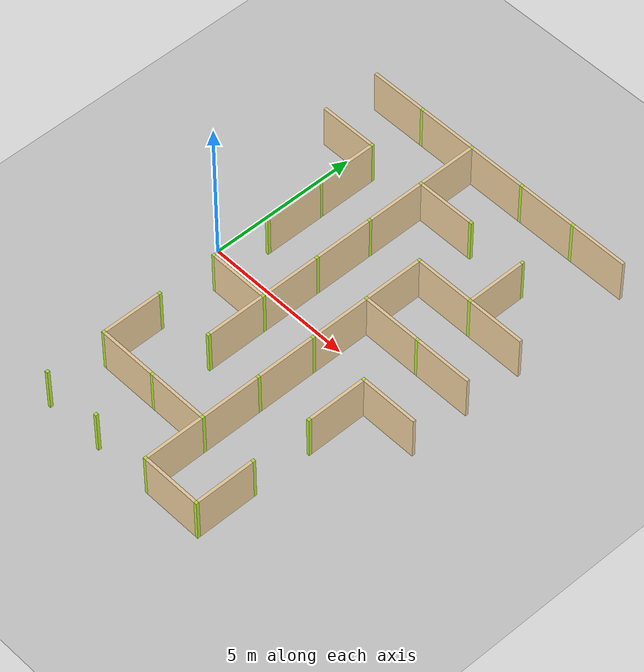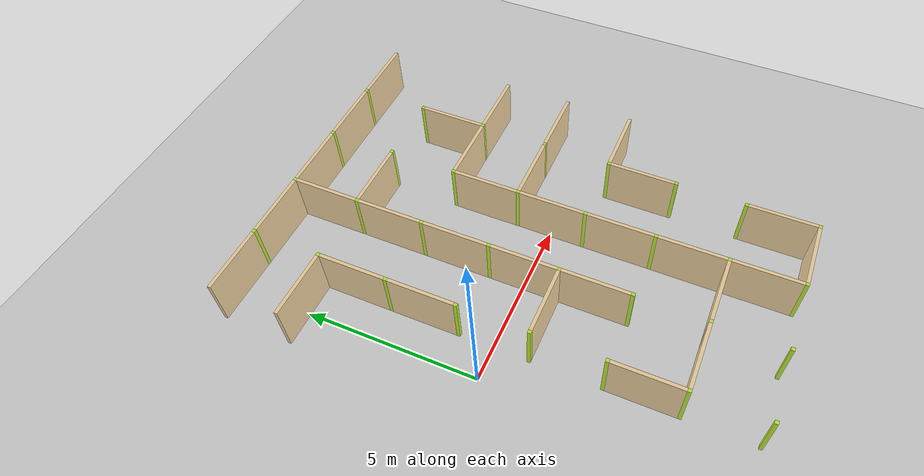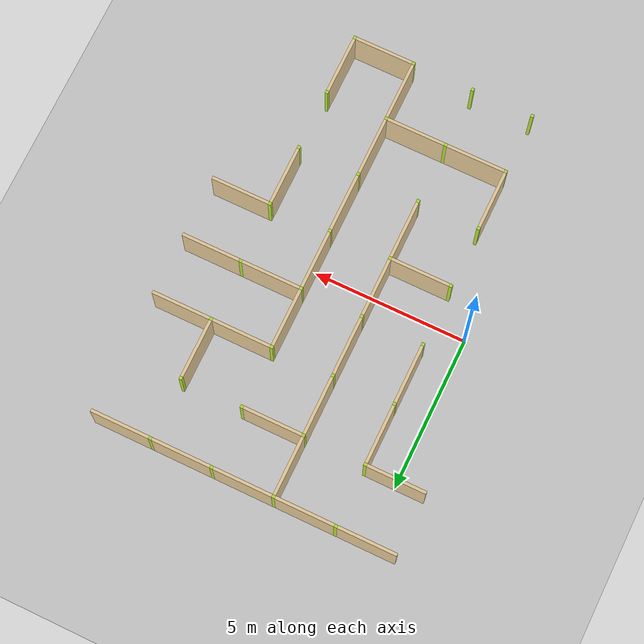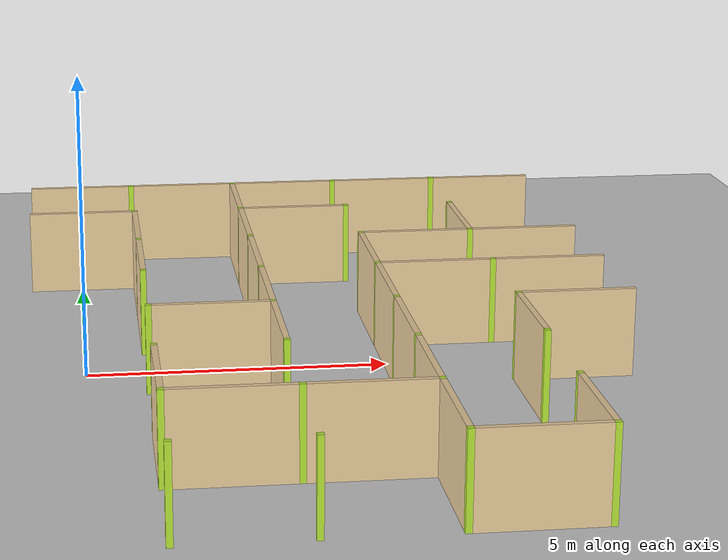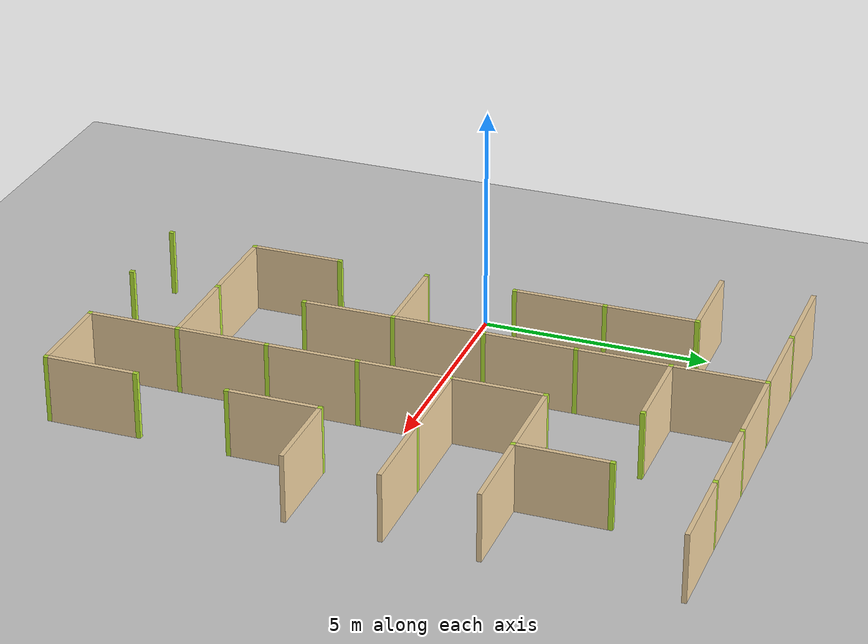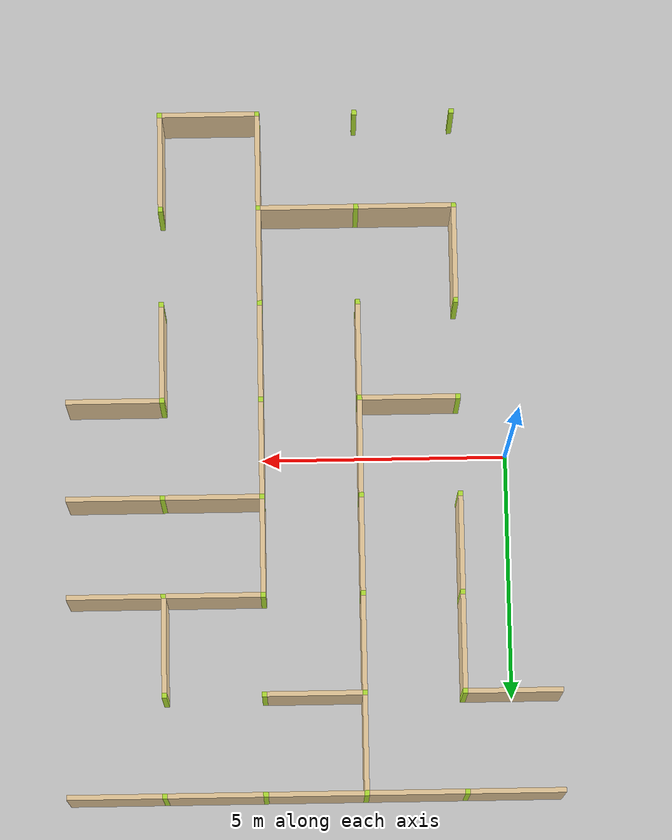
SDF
<sdf version="1.4">
 <world name="maze_world">
  <model name="ground">
   <static>true</static>
   <link name="ground_link">
    <collision name="collision1"><geometry><plane><normal>0 0 1</normal></plane></geometry></collision>
    <visual name="visual1"><geometry><plane><normal>0 0 1</normal><size>100 100</size></plane></geometry></visual>
   </link>
  </model>
  <model name="Untitled">
   <link name="Wall_3_0_h">
    <collision name="Wall_0_Collision">
     <geometry><box><size>1.9 0.1 1.5</size></box></geometry>
     <pose>0 0 0.75 0 -0 0</pose>
    </collision>
    <visual name="Wall_0_Visual">
     <pose>0 0 0.75 0 -0 0</pose>
     <geometry><box><size>1.9 0.1 1.5</size></box></geometry>
     <material>
      <script><uri>file://media/materials/scripts/gazebo.material</uri><name>Gazebo/Grey</name></script>
      <ambient>0.921569 0.807843 0.615686 1</ambient>
     </material>
     <meta><layer>0</layer></meta>
    </visual>
    <pose>0.0 7 0 0 -0 0</pose>
    <sensor name="my_contact" type="contact">
     <contact><collision>box_collision</collision><topic>/rover_collision</topic></contact>
    </sensor>
   </link>
   <link name="Wall_4_0_h">
    <collision name="Wall_0_Collision">
     <geometry><box><size>1.9 0.1 1.5</size></box></geometry>
     <pose>0 0 0.75 0 -0 0</pose>
    </collision>
    <visual name="Wall_0_Visual">
     <pose>0 0 0.75 0 -0 0</pose>
     <geometry><box><size>1.9 0.1 1.5</size></box></geometry>
     <material>
      <script><uri>file://media/materials/scripts/gazebo.material</uri><name>Gazebo/Grey</name></script>
      <ambient>0.921569 0.807843 0.615686 1</ambient>
     </material>
     <meta><layer>0</layer></meta>
    </visual>
    <pose>2.0 7 0 0 -0 0</pose>
    <sensor name="my_contact" type="contact">
     <contact><collision>box_collision</collision><topic>/rover_collision</topic></contact>
    </sensor>
   </link>
   <link name="Joint_1_7">
    <collision name="Wall_2_Collision">
     <geometry><box><size>0.1 0.1 1.5</size></box></geometry>
     <pose>0 0 0.75 0 -0 0</pose>
    </collision>
    <visual name="Wall_2_Visual">
     <pose>0 0 0.75 0 -0 0</pose>
     <geometry><box><size>0.1 0.1 1.5</size></box></geometry>
     <material>
      <script><uri>file://media/materials/scripts/gazebo.material</uri><name>Gazebo/Grey</name></script>
      <ambient>0.721569 0.907843 0.215686 1</ambient>
     </material>
     <meta><layer>0</layer></meta>
    </visual>
    <pose>1 7 0 0 -0 0</pose>
    <sensor name="my_contact" type="contact">
     <contact><collision>box_collision</collision><topic>/rover_collision</topic></contact>
    </sensor>
   </link>
   <link name="Wall_5_0_h">
    <collision name="Wall_0_Collision">
     <geometry><box><size>1.9 0.1 1.5</size></box></geometry>
     <pose>0 0 0.75 0 -0 0</pose>
    </collision>
    <visual name="Wall_0_Visual">
     <pose>0 0 0.75 0 -0 0</pose>
     <geometry><box><size>1.9 0.1 1.5</size></box></geometry>
     <material>
      <script><uri>file://media/materials/scripts/gazebo.material</uri><name>Gazebo/Grey</name></script>
      <ambient>0.921569 0.807843 0.615686 1</ambient>
     </material>
     <meta><layer>0</layer></meta>
    </visual>
    <pose>4.0 7 0 0 -0 0</pose>
    <sensor name="my_contact" type="contact">
     <contact><collision>box_collision</collision><topic>/rover_collision</topic></contact>
    </sensor>
   </link>
   <link name="Wall_5_0_v">
    <collision name="Wall_0_Collision">
     <geometry><box><size>1.9 0.1 1.5</size></box></geometry>
     <pose>0 0 0.75 0 -0 0</pose>
    </collision>
    <visual name="Wall_0_Visual">
     <pose>0 0 0.75 0 -0 0</pose>
     <geometry><box><size>1.9 0.1 1.5</size></box></geometry>
     <material>
      <script><uri>file://media/materials/scripts/gazebo.material</uri><name>Gazebo/Grey</name></script>
      <ambient>0.921569 0.807843 0.615686 1</ambient>
     </material>
     <meta><layer>0</layer></meta>
    </visual>
    <pose>3 6.0 0 0 -0 1.5708</pose>
    <sensor name="my_contact" type="contact">
     <contact><collision>box_collision</collision><topic>/rover_collision</topic></contact>
    </sensor>
   </link>
   <link name="Joint_3_7">
    <collision name="Wall_2_Collision">
     <geometry><box><size>0.1 0.1 1.5</size></box></geometry>
     <pose>0 0 0.75 0 -0 0</pose>
    </collision>
    <visual name="Wall_2_Visual">
     <pose>0 0 0.75 0 -0 0</pose>
     <geometry><box><size>0.1 0.1 1.5</size></box></geometry>
     <material>
      <script><uri>file://media/materials/scripts/gazebo.material</uri><name>Gazebo/Grey</name></script>
      <ambient>0.721569 0.907843 0.215686 1</ambient>
     </material>
     <meta><layer>0</layer></meta>
    </visual>
    <pose>3 7 0 0 -0 0</pose>
    <sensor name="my_contact" type="contact">
     <contact><collision>box_collision</collision><topic>/rover_collision</topic></contact>
    </sensor>
   </link>
   <link name="Wall_6_0_h">
    <collision name="Wall_0_Collision">
     <geometry><box><size>1.9 0.1 1.5</size></box></geometry>
     <pose>0 0 0.75 0 -0 0</pose>
    </collision>
    <visual name="Wall_0_Visual">
     <pose>0 0 0.75 0 -0 0</pose>
     <geometry><box><size>1.9 0.1 1.5</size></box></geometry>
     <material>
      <script><uri>file://media/materials/scripts/gazebo.material</uri><name>Gazebo/Grey</name></script>
      <ambient>0.921569 0.807843 0.615686 1</ambient>
     </material>
     <meta><layer>0</layer></meta>
    </visual>
    <pose>6.0 7 0 0 -0 0</pose>
    <sensor name="my_contact" type="contact">
     <contact><collision>box_collision</collision><topic>/rover_collision</topic></contact>
    </sensor>
   </link>
   <link name="Joint_5_7">
    <collision name="Wall_2_Collision">
     <geometry><box><size>0.1 0.1 1.5</size></box></geometry>
     <pose>0 0 0.75 0 -0 0</pose>
    </collision>
    <visual name="Wall_2_Visual">
     <pose>0 0 0.75 0 -0 0</pose>
     <geometry><box><size>0.1 0.1 1.5</size></box></geometry>
     <material>
      <script><uri>file://media/materials/scripts/gazebo.material</uri><name>Gazebo/Grey</name></script>
      <ambient>0.721569 0.907843 0.215686 1</ambient>
     </material>
     <meta><layer>0</layer></meta>
    </visual>
    <pose>5 7 0 0 -0 0</pose>
    <sensor name="my_contact" type="contact">
     <contact><collision>box_collision</collision><topic>/rover_collision</topic></contact>
    </sensor>
   </link>
   <link name="Wall_7_0_h">
    <collision name="Wall_0_Collision">
     <geometry><box><size>1.9 0.1 1.5</size></box></geometry>
     <pose>0 0 0.75 0 -0 0</pose>
    </collision>
    <visual name="Wall_0_Visual">
     <pose>0 0 0.75 0 -0 0</pose>
     <geometry><box><size>1.9 0.1 1.5</size></box></geometry>
     <material>
      <script><uri>file://media/materials/scripts/gazebo.material</uri><name>Gazebo/Grey</name></script>
      <ambient>0.921569 0.807843 0.615686 1</ambient>
     </material>
     <meta><layer>0</layer></meta>
    </visual>
    <pose>8.0 7 0 0 -0 0</pose>
    <sensor name="my_contact" type="contact">
     <contact><collision>box_collision</collision><topic>/rover_collision</topic></contact>
    </sensor>
   </link>
   <link name="Joint_7_7">
    <collision name="Wall_2_Collision">
     <geometry><box><size>0.1 0.1 1.5</size></box></geometry>
     <pose>0 0 0.75 0 -0 0</pose>
    </collision>
    <visual name="Wall_2_Visual">
     <pose>0 0 0.75 0 -0 0</pose>
     <geometry><box><size>0.1 0.1 1.5</size></box></geometry>
     <material>
      <script><uri>file://media/materials/scripts/gazebo.material</uri><name>Gazebo/Grey</name></script>
      <ambient>0.721569 0.907843 0.215686 1</ambient>
     </material>
     <meta><layer>0</layer></meta>
    </visual>
    <pose>7 7 0 0 -0 0</pose>
    <sensor name="my_contact" type="contact">
     <contact><collision>box_collision</collision><topic>/rover_collision</topic></contact>
    </sensor>
   </link>
   <link name="Wall_3_1_h">
    <collision name="Wall_0_Collision">
     <geometry><box><size>1.9 0.1 1.5</size></box></geometry>
     <pose>0 0 0.75 0 -0 0</pose>
    </collision>
    <visual name="Wall_0_Visual">
     <pose>0 0 0.75 0 -0 0</pose>
     <geometry><box><size>1.9 0.1 1.5</size></box></geometry>
     <material>
      <script><uri>file://media/materials/scripts/gazebo.material</uri><name>Gazebo/Grey</name></script>
      <ambient>0.921569 0.807843 0.615686 1</ambient>
     </material>
     <meta><layer>0</layer></meta>
    </visual>
    <pose>0.0 5 0 0 -0 0</pose>
    <sensor name="my_contact" type="contact">
     <contact><collision>box_collision</collision><topic>/rover_collision</topic></contact>
    </sensor>
   </link>
   <link name="Wall_4_1_v">
    <collision name="Wall_0_Collision">
     <geometry><box><size>1.9 0.1 1.5</size></box></geometry>
     <pose>0 0 0.75 0 -0 0</pose>
    </collision>
    <visual name="Wall_0_Visual">
     <pose>0 0 0.75 0 -0 0</pose>
     <geometry><box><size>1.9 0.1 1.5</size></box></geometry>
     <material>
      <script><uri>file://media/materials/scripts/gazebo.material</uri><name>Gazebo/Grey</name></script>
      <ambient>0.921569 0.807843 0.615686 1</ambient>
     </material>
     <meta><layer>0</layer></meta>
    </visual>
    <pose>1 4.0 0 0 -0 1.5708</pose>
    <sensor name="my_contact" type="contact">
     <contact><collision>box_collision</collision><topic>/rover_collision</topic></contact>
    </sensor>
   </link>
   <link name="Joint_1_5">
    <collision name="Wall_2_Collision">
     <geometry><box><size>0.1 0.1 1.5</size></box></geometry>
     <pose>0 0 0.75 0 -0 0</pose>
    </collision>
    <visual name="Wall_2_Visual">
     <pose>0 0 0.75 0 -0 0</pose>
     <geometry><box><size>0.1 0.1 1.5</size></box></geometry>
     <material>
      <script><uri>file://media/materials/scripts/gazebo.material</uri><name>Gazebo/Grey</name></script>
      <ambient>0.721569 0.907843 0.215686 1</ambient>
     </material>
     <meta><layer>0</layer></meta>
    </visual>
    <pose>1 5 0 0 -0 0</pose>
    <sensor name="my_contact" type="contact">
     <contact><collision>box_collision</collision><topic>/rover_collision</topic></contact>
    </sensor>
   </link>
   <link name="Wall_5_1_h">
    <collision name="Wall_0_Collision">
     <geometry><box><size>1.9 0.1 1.5</size></box></geometry>
     <pose>0 0 0.75 0 -0 0</pose>
    </collision>
    <visual name="Wall_0_Visual">
     <pose>0 0 0.75 0 -0 0</pose>
     <geometry><box><size>1.9 0.1 1.5</size></box></geometry>
     <material>
      <script><uri>file://media/materials/scripts/gazebo.material</uri><name>Gazebo/Grey</name></script>
      <ambient>0.921569 0.807843 0.615686 1</ambient>
     </material>
     <meta><layer>0</layer></meta>
    </visual>
    <pose>4.0 5 0 0 -0 0</pose>
    <sensor name="my_contact" type="contact">
     <contact><collision>box_collision</collision><topic>/rover_collision</topic></contact>
    </sensor>
   </link>
   <link name="Wall_5_1_v">
    <collision name="Wall_0_Collision">
     <geometry><box><size>1.9 0.1 1.5</size></box></geometry>
     <pose>0 0 0.75 0 -0 0</pose>
    </collision>
    <visual name="Wall_0_Visual">
     <pose>0 0 0.75 0 -0 0</pose>
     <geometry><box><size>1.9 0.1 1.5</size></box></geometry>
     <material>
      <script><uri>file://media/materials/scripts/gazebo.material</uri><name>Gazebo/Grey</name></script>
      <ambient>0.921569 0.807843 0.615686 1</ambient>
     </material>
     <meta><layer>0</layer></meta>
    </visual>
    <pose>3 4.0 0 0 -0 1.5708</pose>
    <sensor name="my_contact" type="contact">
     <contact><collision>box_collision</collision><topic>/rover_collision</topic></contact>
    </sensor>
   </link>
   <link name="Joint_3_5">
    <collision name="Wall_2_Collision">
     <geometry><box><size>0.1 0.1 1.5</size></box></geometry>
     <pose>0 0 0.75 0 -0 0</pose>
    </collision>
    <visual name="Wall_2_Visual">
     <pose>0 0 0.75 0 -0 0</pose>
     <geometry><box><size>0.1 0.1 1.5</size></box></geometry>
     <material>
      <script><uri>file://media/materials/scripts/gazebo.material</uri><name>Gazebo/Grey</name></script>
      <ambient>0.721569 0.907843 0.215686 1</ambient>
     </material>
     <meta><layer>0</layer></meta>
    </visual>
    <pose>3 5 0 0 -0 0</pose>
    <sensor name="my_contact" type="contact">
     <contact><collision>box_collision</collision><topic>/rover_collision</topic></contact>
    </sensor>
   </link>
   <link name="Joint_5_5">
    <collision name="Wall_2_Collision">
     <geometry><box><size>0.1 0.1 1.5</size></box></geometry>
     <pose>0 0 0.75 0 -0 0</pose>
    </collision>
    <visual name="Wall_2_Visual">
     <pose>0 0 0.75 0 -0 0</pose>
     <geometry><box><size>0.1 0.1 1.5</size></box></geometry>
     <material>
      <script><uri>file://media/materials/scripts/gazebo.material</uri><name>Gazebo/Grey</name></script>
      <ambient>0.721569 0.907843 0.215686 1</ambient>
     </material>
     <meta><layer>0</layer></meta>
    </visual>
    <pose>5 5 0 0 -0 0</pose>
    <sensor name="my_contact" type="contact">
     <contact><collision>box_collision</collision><topic>/rover_collision</topic></contact>
    </sensor>
   </link>
   <link name="Wall_7_1_v">
    <collision name="Wall_0_Collision">
     <geometry><box><size>1.9 0.1 1.5</size></box></geometry>
     <pose>0 0 0.75 0 -0 0</pose>
    </collision>
    <visual name="Wall_0_Visual">
     <pose>0 0 0.75 0 -0 0</pose>
     <geometry><box><size>1.9 0.1 1.5</size></box></geometry>
     <material>
      <script><uri>file://media/materials/scripts/gazebo.material</uri><name>Gazebo/Grey</name></script>
      <ambient>0.921569 0.807843 0.615686 1</ambient>
     </material>
     <meta><layer>0</layer></meta>
    </visual>
    <pose>7 4.0 0 0 -0 1.5708</pose>
    <sensor name="my_contact" type="contact">
     <contact><collision>box_collision</collision><topic>/rover_collision</topic></contact>
    </sensor>
   </link>
   <link name="Joint_7_5">
    <collision name="Wall_2_Collision">
     <geometry><box><size>0.1 0.1 1.5</size></box></geometry>
     <pose>0 0 0.75 0 -0 0</pose>
    </collision>
    <visual name="Wall_2_Visual">
     <pose>0 0 0.75 0 -0 0</pose>
     <geometry><box><size>0.1 0.1 1.5</size></box></geometry>
     <material>
      <script><uri>file://media/materials/scripts/gazebo.material</uri><name>Gazebo/Grey</name></script>
      <ambient>0.721569 0.907843 0.215686 1</ambient>
     </material>
     <meta><layer>0</layer></meta>
    </visual>
    <pose>7 5 0 0 -0 0</pose>
    <sensor name="my_contact" type="contact">
     <contact><collision>box_collision</collision><topic>/rover_collision</topic></contact>
    </sensor>
   </link>
   <link name="Wall_4_2_v">
    <collision name="Wall_0_Collision">
     <geometry><box><size>1.9 0.1 1.5</size></box></geometry>
     <pose>0 0 0.75 0 -0 0</pose>
    </collision>
    <visual name="Wall_0_Visual">
     <pose>0 0 0.75 0 -0 0</pose>
     <geometry><box><size>1.9 0.1 1.5</size></box></geometry>
     <material>
      <script><uri>file://media/materials/scripts/gazebo.material</uri><name>Gazebo/Grey</name></script>
      <ambient>0.921569 0.807843 0.615686 1</ambient>
     </material>
     <meta><layer>0</layer></meta>
    </visual>
    <pose>1 2.0 0 0 -0 1.5708</pose>
    <sensor name="my_contact" type="contact">
     <contact><collision>box_collision</collision><topic>/rover_collision</topic></contact>
    </sensor>
   </link>
   <link name="Joint_1_3">
    <collision name="Wall_2_Collision">
     <geometry><box><size>0.1 0.1 1.5</size></box></geometry>
     <pose>0 0 0.75 0 -0 0</pose>
    </collision>
    <visual name="Wall_2_Visual">
     <pose>0 0 0.75 0 -0 0</pose>
     <geometry><box><size>0.1 0.1 1.5</size></box></geometry>
     <material>
      <script><uri>file://media/materials/scripts/gazebo.material</uri><name>Gazebo/Grey</name></script>
      <ambient>0.721569 0.907843 0.215686 1</ambient>
     </material>
     <meta><layer>0</layer></meta>
    </visual>
    <pose>1 3 0 0 -0 0</pose>
    <sensor name="my_contact" type="contact">
     <contact><collision>box_collision</collision><topic>/rover_collision</topic></contact>
    </sensor>
   </link>
   <link name="Wall_5_2_v">
    <collision name="Wall_0_Collision">
     <geometry><box><size>1.9 0.1 1.5</size></box></geometry>
     <pose>0 0 0.75 0 -0 0</pose>
    </collision>
    <visual name="Wall_0_Visual">
     <pose>0 0 0.75 0 -0 0</pose>
     <geometry><box><size>1.9 0.1 1.5</size></box></geometry>
     <material>
      <script><uri>file://media/materials/scripts/gazebo.material</uri><name>Gazebo/Grey</name></script>
      <ambient>0.921569 0.807843 0.615686 1</ambient>
     </material>
     <meta><layer>0</layer></meta>
    </visual>
    <pose>3 2.0 0 0 -0 1.5708</pose>
    <sensor name="my_contact" type="contact">
     <contact><collision>box_collision</collision><topic>/rover_collision</topic></contact>
    </sensor>
   </link>
   <link name="Joint_3_3">
    <collision name="Wall_2_Collision">
     <geometry><box><size>0.1 0.1 1.5</size></box></geometry>
     <pose>0 0 0.75 0 -0 0</pose>
    </collision>
    <visual name="Wall_2_Visual">
     <pose>0 0 0.75 0 -0 0</pose>
     <geometry><box><size>0.1 0.1 1.5</size></box></geometry>
     <material>
      <script><uri>file://media/materials/scripts/gazebo.material</uri><name>Gazebo/Grey</name></script>
      <ambient>0.721569 0.907843 0.215686 1</ambient>
     </material>
     <meta><layer>0</layer></meta>
    </visual>
    <pose>3 3 0 0 -0 0</pose>
    <sensor name="my_contact" type="contact">
     <contact><collision>box_collision</collision><topic>/rover_collision</topic></contact>
    </sensor>
   </link>
   <link name="Wall_6_2_h">
    <collision name="Wall_0_Collision">
     <geometry><box><size>1.9 0.1 1.5</size></box></geometry>
     <pose>0 0 0.75 0 -0 0</pose>
    </collision>
    <visual name="Wall_0_Visual">
     <pose>0 0 0.75 0 -0 0</pose>
     <geometry><box><size>1.9 0.1 1.5</size></box></geometry>
     <material>
      <script><uri>file://media/materials/scripts/gazebo.material</uri><name>Gazebo/Grey</name></script>
      <ambient>0.921569 0.807843 0.615686 1</ambient>
     </material>
     <meta><layer>0</layer></meta>
    </visual>
    <pose>6.0 3 0 0 -0 0</pose>
    <sensor name="my_contact" type="contact">
     <contact><collision>box_collision</collision><topic>/rover_collision</topic></contact>
    </sensor>
   </link>
   <link name="Wall_6_2_v">
    <collision name="Wall_0_Collision">
     <geometry><box><size>1.9 0.1 1.5</size></box></geometry>
     <pose>0 0 0.75 0 -0 0</pose>
    </collision>
    <visual name="Wall_0_Visual">
     <pose>0 0 0.75 0 -0 0</pose>
     <geometry><box><size>1.9 0.1 1.5</size></box></geometry>
     <material>
      <script><uri>file://media/materials/scripts/gazebo.material</uri><name>Gazebo/Grey</name></script>
      <ambient>0.921569 0.807843 0.615686 1</ambient>
     </material>
     <meta><layer>0</layer></meta>
    </visual>
    <pose>5 2.0 0 0 -0 1.5708</pose>
    <sensor name="my_contact" type="contact">
     <contact><collision>box_collision</collision><topic>/rover_collision</topic></contact>
    </sensor>
   </link>
   <link name="Joint_5_3">
    <collision name="Wall_2_Collision">
     <geometry><box><size>0.1 0.1 1.5</size></box></geometry>
     <pose>0 0 0.75 0 -0 0</pose>
    </collision>
    <visual name="Wall_2_Visual">
     <pose>0 0 0.75 0 -0 0</pose>
     <geometry><box><size>0.1 0.1 1.5</size></box></geometry>
     <material>
      <script><uri>file://media/materials/scripts/gazebo.material</uri><name>Gazebo/Grey</name></script>
      <ambient>0.721569 0.907843 0.215686 1</ambient>
     </material>
     <meta><layer>0</layer></meta>
    </visual>
    <pose>5 3 0 0 -0 0</pose>
    <sensor name="my_contact" type="contact">
     <contact><collision>box_collision</collision><topic>/rover_collision</topic></contact>
    </sensor>
   </link>
   <link name="Wall_7_2_h">
    <collision name="Wall_0_Collision">
     <geometry><box><size>1.9 0.1 1.5</size></box></geometry>
     <pose>0 0 0.75 0 -0 0</pose>
    </collision>
    <visual name="Wall_0_Visual">
     <pose>0 0 0.75 0 -0 0</pose>
     <geometry><box><size>1.9 0.1 1.5</size></box></geometry>
     <material>
      <script><uri>file://media/materials/scripts/gazebo.material</uri><name>Gazebo/Grey</name></script>
      <ambient>0.921569 0.807843 0.615686 1</ambient>
     </material>
     <meta><layer>0</layer></meta>
    </visual>
    <pose>8.0 3 0 0 -0 0</pose>
    <sensor name="my_contact" type="contact">
     <contact><collision>box_collision</collision><topic>/rover_collision</topic></contact>
    </sensor>
   </link>
   <link name="Joint_7_3">
    <collision name="Wall_2_Collision">
     <geometry><box><size>0.1 0.1 1.5</size></box></geometry>
     <pose>0 0 0.75 0 -0 0</pose>
    </collision>
    <visual name="Wall_2_Visual">
     <pose>0 0 0.75 0 -0 0</pose>
     <geometry><box><size>0.1 0.1 1.5</size></box></geometry>
     <material>
      <script><uri>file://media/materials/scripts/gazebo.material</uri><name>Gazebo/Grey</name></script>
      <ambient>0.721569 0.907843 0.215686 1</ambient>
     </material>
     <meta><layer>0</layer></meta>
    </visual>
    <pose>7 3 0 0 -0 0</pose>
    <sensor name="my_contact" type="contact">
     <contact><collision>box_collision</collision><topic>/rover_collision</topic></contact>
    </sensor>
   </link>
   <link name="Joint_1_1">
    <collision name="Wall_2_Collision">
     <geometry><box><size>0.1 0.1 1.5</size></box></geometry>
     <pose>0 0 0.75 0 -0 0</pose>
    </collision>
    <visual name="Wall_2_Visual">
     <pose>0 0 0.75 0 -0 0</pose>
     <geometry><box><size>0.1 0.1 1.5</size></box></geometry>
     <material>
      <script><uri>file://media/materials/scripts/gazebo.material</uri><name>Gazebo/Grey</name></script>
      <ambient>0.721569 0.907843 0.215686 1</ambient>
     </material>
     <meta><layer>0</layer></meta>
    </visual>
    <pose>1 1 0 0 -0 0</pose>
    <sensor name="my_contact" type="contact">
     <contact><collision>box_collision</collision><topic>/rover_collision</topic></contact>
    </sensor>
   </link>
   <link name="Wall_5_3_v">
    <collision name="Wall_0_Collision">
     <geometry><box><size>1.9 0.1 1.5</size></box></geometry>
     <pose>0 0 0.75 0 -0 0</pose>
    </collision>
    <visual name="Wall_0_Visual">
     <pose>0 0 0.75 0 -0 0</pose>
     <geometry><box><size>1.9 0.1 1.5</size></box></geometry>
     <material>
      <script><uri>file://media/materials/scripts/gazebo.material</uri><name>Gazebo/Grey</name></script>
      <ambient>0.921569 0.807843 0.615686 1</ambient>
     </material>
     <meta><layer>0</layer></meta>
    </visual>
    <pose>3 -0.0 0 0 -0 1.5708</pose>
    <sensor name="my_contact" type="contact">
     <contact><collision>box_collision</collision><topic>/rover_collision</topic></contact>
    </sensor>
   </link>
   <link name="Joint_3_1">
    <collision name="Wall_2_Collision">
     <geometry><box><size>0.1 0.1 1.5</size></box></geometry>
     <pose>0 0 0.75 0 -0 0</pose>
    </collision>
    <visual name="Wall_2_Visual">
     <pose>0 0 0.75 0 -0 0</pose>
     <geometry><box><size>0.1 0.1 1.5</size></box></geometry>
     <material>
      <script><uri>file://media/materials/scripts/gazebo.material</uri><name>Gazebo/Grey</name></script>
      <ambient>0.721569 0.907843 0.215686 1</ambient>
     </material>
     <meta><layer>0</layer></meta>
    </visual>
    <pose>3 1 0 0 -0 0</pose>
    <sensor name="my_contact" type="contact">
     <contact><collision>box_collision</collision><topic>/rover_collision</topic></contact>
    </sensor>
   </link>
   <link name="Wall_6_3_h">
    <collision name="Wall_0_Collision">
     <geometry><box><size>1.9 0.1 1.5</size></box></geometry>
     <pose>0 0 0.75 0 -0 0</pose>
    </collision>
    <visual name="Wall_0_Visual">
     <pose>0 0 0.75 0 -0 0</pose>
     <geometry><box><size>1.9 0.1 1.5</size></box></geometry>
     <material>
      <script><uri>file://media/materials/scripts/gazebo.material</uri><name>Gazebo/Grey</name></script>
      <ambient>0.921569 0.807843 0.615686 1</ambient>
     </material>
     <meta><layer>0</layer></meta>
    </visual>
    <pose>6.0 1 0 0 -0 0</pose>
    <sensor name="my_contact" type="contact">
     <contact><collision>box_collision</collision><topic>/rover_collision</topic></contact>
    </sensor>
   </link>
   <link name="Wall_6_3_v">
    <collision name="Wall_0_Collision">
     <geometry><box><size>1.9 0.1 1.5</size></box></geometry>
     <pose>0 0 0.75 0 -0 0</pose>
    </collision>
    <visual name="Wall_0_Visual">
     <pose>0 0 0.75 0 -0 0</pose>
     <geometry><box><size>1.9 0.1 1.5</size></box></geometry>
     <material>
      <script><uri>file://media/materials/scripts/gazebo.material</uri><name>Gazebo/Grey</name></script>
      <ambient>0.921569 0.807843 0.615686 1</ambient>
     </material>
     <meta><layer>0</layer></meta>
    </visual>
    <pose>5 -0.0 0 0 -0 1.5708</pose>
    <sensor name="my_contact" type="contact">
     <contact><collision>box_collision</collision><topic>/rover_collision</topic></contact>
    </sensor>
   </link>
   <link name="Joint_5_1">
    <collision name="Wall_2_Collision">
     <geometry><box><size>0.1 0.1 1.5</size></box></geometry>
     <pose>0 0 0.75 0 -0 0</pose>
    </collision>
    <visual name="Wall_2_Visual">
     <pose>0 0 0.75 0 -0 0</pose>
     <geometry><box><size>0.1 0.1 1.5</size></box></geometry>
     <material>
      <script><uri>file://media/materials/scripts/gazebo.material</uri><name>Gazebo/Grey</name></script>
      <ambient>0.721569 0.907843 0.215686 1</ambient>
     </material>
     <meta><layer>0</layer></meta>
    </visual>
    <pose>5 1 0 0 -0 0</pose>
    <sensor name="my_contact" type="contact">
     <contact><collision>box_collision</collision><topic>/rover_collision</topic></contact>
    </sensor>
   </link>
   <link name="Wall_7_3_h">
    <collision name="Wall_0_Collision">
     <geometry><box><size>1.9 0.1 1.5</size></box></geometry>
     <pose>0 0 0.75 0 -0 0</pose>
    </collision>
    <visual name="Wall_0_Visual">
     <pose>0 0 0.75 0 -0 0</pose>
     <geometry><box><size>1.9 0.1 1.5</size></box></geometry>
     <material>
      <script><uri>file://media/materials/scripts/gazebo.material</uri><name>Gazebo/Grey</name></script>
      <ambient>0.921569 0.807843 0.615686 1</ambient>
     </material>
     <meta><layer>0</layer></meta>
    </visual>
    <pose>8.0 1 0 0 -0 0</pose>
    <sensor name="my_contact" type="contact">
     <contact><collision>box_collision</collision><topic>/rover_collision</topic></contact>
    </sensor>
   </link>
   <link name="Joint_7_1">
    <collision name="Wall_2_Collision">
     <geometry><box><size>0.1 0.1 1.5</size></box></geometry>
     <pose>0 0 0.75 0 -0 0</pose>
    </collision>
    <visual name="Wall_2_Visual">
     <pose>0 0 0.75 0 -0 0</pose>
     <geometry><box><size>0.1 0.1 1.5</size></box></geometry>
     <material>
      <script><uri>file://media/materials/scripts/gazebo.material</uri><name>Gazebo/Grey</name></script>
      <ambient>0.721569 0.907843 0.215686 1</ambient>
     </material>
     <meta><layer>0</layer></meta>
    </visual>
    <pose>7 1 0 0 -0 0</pose>
    <sensor name="my_contact" type="contact">
     <contact><collision>box_collision</collision><topic>/rover_collision</topic></contact>
    </sensor>
   </link>
   <link name="Wall_4_4_h">
    <collision name="Wall_0_Collision">
     <geometry><box><size>1.9 0.1 1.5</size></box></geometry>
     <pose>0 0 0.75 0 -0 0</pose>
    </collision>
    <visual name="Wall_0_Visual">
     <pose>0 0 0.75 0 -0 0</pose>
     <geometry><box><size>1.9 0.1 1.5</size></box></geometry>
     <material>
      <script><uri>file://media/materials/scripts/gazebo.material</uri><name>Gazebo/Grey</name></script>
      <ambient>0.921569 0.807843 0.615686 1</ambient>
     </material>
     <meta><layer>0</layer></meta>
    </visual>
    <pose>2.0 -1 0 0 -0 0</pose>
    <sensor name="my_contact" type="contact">
     <contact><collision>box_collision</collision><topic>/rover_collision</topic></contact>
    </sensor>
   </link>
   <link name="Joint_1_-1">
    <collision name="Wall_2_Collision">
     <geometry><box><size>0.1 0.1 1.5</size></box></geometry>
     <pose>0 0 0.75 0 -0 0</pose>
    </collision>
    <visual name="Wall_2_Visual">
     <pose>0 0 0.75 0 -0 0</pose>
     <geometry><box><size>0.1 0.1 1.5</size></box></geometry>
     <material>
      <script><uri>file://media/materials/scripts/gazebo.material</uri><name>Gazebo/Grey</name></script>
      <ambient>0.721569 0.907843 0.215686 1</ambient>
     </material>
     <meta><layer>0</layer></meta>
    </visual>
    <pose>1 -1 0 0 -0 0</pose>
    <sensor name="my_contact" type="contact">
     <contact><collision>box_collision</collision><topic>/rover_collision</topic></contact>
    </sensor>
   </link>
   <link name="Wall_5_4_v">
    <collision name="Wall_0_Collision">
     <geometry><box><size>1.9 0.1 1.5</size></box></geometry>
     <pose>0 0 0.75 0 -0 0</pose>
    </collision>
    <visual name="Wall_0_Visual">
     <pose>0 0 0.75 0 -0 0</pose>
     <geometry><box><size>1.9 0.1 1.5</size></box></geometry>
     <material>
      <script><uri>file://media/materials/scripts/gazebo.material</uri><name>Gazebo/Grey</name></script>
      <ambient>0.921569 0.807843 0.615686 1</ambient>
     </material>
     <meta><layer>0</layer></meta>
    </visual>
    <pose>3 -2.0 0 0 -0 1.5708</pose>
    <sensor name="my_contact" type="contact">
     <contact><collision>box_collision</collision><topic>/rover_collision</topic></contact>
    </sensor>
   </link>
   <link name="Joint_3_-1">
    <collision name="Wall_2_Collision">
     <geometry><box><size>0.1 0.1 1.5</size></box></geometry>
     <pose>0 0 0.75 0 -0 0</pose>
    </collision>
    <visual name="Wall_2_Visual">
     <pose>0 0 0.75 0 -0 0</pose>
     <geometry><box><size>0.1 0.1 1.5</size></box></geometry>
     <material>
      <script><uri>file://media/materials/scripts/gazebo.material</uri><name>Gazebo/Grey</name></script>
      <ambient>0.721569 0.907843 0.215686 1</ambient>
     </material>
     <meta><layer>0</layer></meta>
    </visual>
    <pose>3 -1 0 0 -0 0</pose>
    <sensor name="my_contact" type="contact">
     <contact><collision>box_collision</collision><topic>/rover_collision</topic></contact>
    </sensor>
   </link>
   <link name="Wall_6_4_v">
    <collision name="Wall_0_Collision">
     <geometry><box><size>1.9 0.1 1.5</size></box></geometry>
     <pose>0 0 0.75 0 -0 0</pose>
    </collision>
    <visual name="Wall_0_Visual">
     <pose>0 0 0.75 0 -0 0</pose>
     <geometry><box><size>1.9 0.1 1.5</size></box></geometry>
     <material>
      <script><uri>file://media/materials/scripts/gazebo.material</uri><name>Gazebo/Grey</name></script>
      <ambient>0.921569 0.807843 0.615686 1</ambient>
     </material>
     <meta><layer>0</layer></meta>
    </visual>
    <pose>5 -2.0 0 0 -0 1.5708</pose>
    <sensor name="my_contact" type="contact">
     <contact><collision>box_collision</collision><topic>/rover_collision</topic></contact>
    </sensor>
   </link>
   <link name="Joint_5_-1">
    <collision name="Wall_2_Collision">
     <geometry><box><size>0.1 0.1 1.5</size></box></geometry>
     <pose>0 0 0.75 0 -0 0</pose>
    </collision>
    <visual name="Wall_2_Visual">
     <pose>0 0 0.75 0 -0 0</pose>
     <geometry><box><size>0.1 0.1 1.5</size></box></geometry>
     <material>
      <script><uri>file://media/materials/scripts/gazebo.material</uri><name>Gazebo/Grey</name></script>
      <ambient>0.721569 0.907843 0.215686 1</ambient>
     </material>
     <meta><layer>0</layer></meta>
    </visual>
    <pose>5 -1 0 0 -0 0</pose>
    <sensor name="my_contact" type="contact">
     <contact><collision>box_collision</collision><topic>/rover_collision</topic></contact>
    </sensor>
   </link>
   <link name="Wall_7_4_h">
    <collision name="Wall_0_Collision">
     <geometry><box><size>1.9 0.1 1.5</size></box></geometry>
     <pose>0 0 0.75 0 -0 0</pose>
    </collision>
    <visual name="Wall_0_Visual">
     <pose>0 0 0.75 0 -0 0</pose>
     <geometry><box><size>1.9 0.1 1.5</size></box></geometry>
     <material>
      <script><uri>file://media/materials/scripts/gazebo.material</uri><name>Gazebo/Grey</name></script>
      <ambient>0.921569 0.807843 0.615686 1</ambient>
     </material>
     <meta><layer>0</layer></meta>
    </visual>
    <pose>8.0 -1 0 0 -0 0</pose>
    <sensor name="my_contact" type="contact">
     <contact><collision>box_collision</collision><topic>/rover_collision</topic></contact>
    </sensor>
   </link>
   <link name="Wall_7_4_v">
    <collision name="Wall_0_Collision">
     <geometry><box><size>1.9 0.1 1.5</size></box></geometry>
     <pose>0 0 0.75 0 -0 0</pose>
    </collision>
    <visual name="Wall_0_Visual">
     <pose>0 0 0.75 0 -0 0</pose>
     <geometry><box><size>1.9 0.1 1.5</size></box></geometry>
     <material>
      <script><uri>file://media/materials/scripts/gazebo.material</uri><name>Gazebo/Grey</name></script>
      <ambient>0.921569 0.807843 0.615686 1</ambient>
     </material>
     <meta><layer>0</layer></meta>
    </visual>
    <pose>7 -2.0 0 0 -0 1.5708</pose>
    <sensor name="my_contact" type="contact">
     <contact><collision>box_collision</collision><topic>/rover_collision</topic></contact>
    </sensor>
   </link>
   <link name="Joint_7_-1">
    <collision name="Wall_2_Collision">
     <geometry><box><size>0.1 0.1 1.5</size></box></geometry>
     <pose>0 0 0.75 0 -0 0</pose>
    </collision>
    <visual name="Wall_2_Visual">
     <pose>0 0 0.75 0 -0 0</pose>
     <geometry><box><size>0.1 0.1 1.5</size></box></geometry>
     <material>
      <script><uri>file://media/materials/scripts/gazebo.material</uri><name>Gazebo/Grey</name></script>
      <ambient>0.721569 0.907843 0.215686 1</ambient>
     </material>
     <meta><layer>0</layer></meta>
    </visual>
    <pose>7 -1 0 0 -0 0</pose>
    <sensor name="my_contact" type="contact">
     <contact><collision>box_collision</collision><topic>/rover_collision</topic></contact>
    </sensor>
   </link>
   <link name="Wall_4_5_v">
    <collision name="Wall_0_Collision">
     <geometry><box><size>1.9 0.1 1.5</size></box></geometry>
     <pose>0 0 0.75 0 -0 0</pose>
    </collision>
    <visual name="Wall_0_Visual">
     <pose>0 0 0.75 0 -0 0</pose>
     <geometry><box><size>1.9 0.1 1.5</size></box></geometry>
     <material>
      <script><uri>file://media/materials/scripts/gazebo.material</uri><name>Gazebo/Grey</name></script>
      <ambient>0.921569 0.807843 0.615686 1</ambient>
     </material>
     <meta><layer>0</layer></meta>
    </visual>
    <pose>1 -4.0 0 0 -0 1.5708</pose>
    <sensor name="my_contact" type="contact">
     <contact><collision>box_collision</collision><topic>/rover_collision</topic></contact>
    </sensor>
   </link>
   <link name="Joint_1_-3">
    <collision name="Wall_2_Collision">
     <geometry><box><size>0.1 0.1 1.5</size></box></geometry>
     <pose>0 0 0.75 0 -0 0</pose>
    </collision>
    <visual name="Wall_2_Visual">
     <pose>0 0 0.75 0 -0 0</pose>
     <geometry><box><size>0.1 0.1 1.5</size></box></geometry>
     <material>
      <script><uri>file://media/materials/scripts/gazebo.material</uri><name>Gazebo/Grey</name></script>
      <ambient>0.721569 0.907843 0.215686 1</ambient>
     </material>
     <meta><layer>0</layer></meta>
    </visual>
    <pose>1 -3 0 0 -0 0</pose>
    <sensor name="my_contact" type="contact">
     <contact><collision>box_collision</collision><topic>/rover_collision</topic></contact>
    </sensor>
   </link>
   <link name="Joint_3_-3">
    <collision name="Wall_2_Collision">
     <geometry><box><size>0.1 0.1 1.5</size></box></geometry>
     <pose>0 0 0.75 0 -0 0</pose>
    </collision>
    <visual name="Wall_2_Visual">
     <pose>0 0 0.75 0 -0 0</pose>
     <geometry><box><size>0.1 0.1 1.5</size></box></geometry>
     <material>
      <script><uri>file://media/materials/scripts/gazebo.material</uri><name>Gazebo/Grey</name></script>
      <ambient>0.721569 0.907843 0.215686 1</ambient>
     </material>
     <meta><layer>0</layer></meta>
    </visual>
    <pose>3 -3 0 0 -0 0</pose>
    <sensor name="my_contact" type="contact">
     <contact><collision>box_collision</collision><topic>/rover_collision</topic></contact>
    </sensor>
   </link>
   <link name="Wall_6_5_v">
    <collision name="Wall_0_Collision">
     <geometry><box><size>1.9 0.1 1.5</size></box></geometry>
     <pose>0 0 0.75 0 -0 0</pose>
    </collision>
    <visual name="Wall_0_Visual">
     <pose>0 0 0.75 0 -0 0</pose>
     <geometry><box><size>1.9 0.1 1.5</size></box></geometry>
     <material>
      <script><uri>file://media/materials/scripts/gazebo.material</uri><name>Gazebo/Grey</name></script>
      <ambient>0.921569 0.807843 0.615686 1</ambient>
     </material>
     <meta><layer>0</layer></meta>
    </visual>
    <pose>5 -4.0 0 0 -0 1.5708</pose>
    <sensor name="my_contact" type="contact">
     <contact><collision>box_collision</collision><topic>/rover_collision</topic></contact>
    </sensor>
   </link>
   <link name="Joint_5_-3">
    <collision name="Wall_2_Collision">
     <geometry><box><size>0.1 0.1 1.5</size></box></geometry>
     <pose>0 0 0.75 0 -0 0</pose>
    </collision>
    <visual name="Wall_2_Visual">
     <pose>0 0 0.75 0 -0 0</pose>
     <geometry><box><size>0.1 0.1 1.5</size></box></geometry>
     <material>
      <script><uri>file://media/materials/scripts/gazebo.material</uri><name>Gazebo/Grey</name></script>
      <ambient>0.721569 0.907843 0.215686 1</ambient>
     </material>
     <meta><layer>0</layer></meta>
    </visual>
    <pose>5 -3 0 0 -0 0</pose>
    <sensor name="my_contact" type="contact">
     <contact><collision>box_collision</collision><topic>/rover_collision</topic></contact>
    </sensor>
   </link>
   <link name="Joint_7_-3">
    <collision name="Wall_2_Collision">
     <geometry><box><size>0.1 0.1 1.5</size></box></geometry>
     <pose>0 0 0.75 0 -0 0</pose>
    </collision>
    <visual name="Wall_2_Visual">
     <pose>0 0 0.75 0 -0 0</pose>
     <geometry><box><size>0.1 0.1 1.5</size></box></geometry>
     <material>
      <script><uri>file://media/materials/scripts/gazebo.material</uri><name>Gazebo/Grey</name></script>
      <ambient>0.721569 0.907843 0.215686 1</ambient>
     </material>
     <meta><layer>0</layer></meta>
    </visual>
    <pose>7 -3 0 0 -0 0</pose>
    <sensor name="my_contact" type="contact">
     <contact><collision>box_collision</collision><topic>/rover_collision</topic></contact>
    </sensor>
   </link>
   <link name="Wall_4_6_h">
    <collision name="Wall_0_Collision">
     <geometry><box><size>1.9 0.1 1.5</size></box></geometry>
     <pose>0 0 0.75 0 -0 0</pose>
    </collision>
    <visual name="Wall_0_Visual">
     <pose>0 0 0.75 0 -0 0</pose>
     <geometry><box><size>1.9 0.1 1.5</size></box></geometry>
     <material>
      <script><uri>file://media/materials/scripts/gazebo.material</uri><name>Gazebo/Grey</name></script>
      <ambient>0.921569 0.807843 0.615686 1</ambient>
     </material>
     <meta><layer>0</layer></meta>
    </visual>
    <pose>2.0 -5 0 0 -0 0</pose>
    <sensor name="my_contact" type="contact">
     <contact><collision>box_collision</collision><topic>/rover_collision</topic></contact>
    </sensor>
   </link>
   <link name="Joint_1_-5">
    <collision name="Wall_2_Collision">
     <geometry><box><size>0.1 0.1 1.5</size></box></geometry>
     <pose>0 0 0.75 0 -0 0</pose>
    </collision>
    <visual name="Wall_2_Visual">
     <pose>0 0 0.75 0 -0 0</pose>
     <geometry><box><size>0.1 0.1 1.5</size></box></geometry>
     <material>
      <script><uri>file://media/materials/scripts/gazebo.material</uri><name>Gazebo/Grey</name></script>
      <ambient>0.721569 0.907843 0.215686 1</ambient>
     </material>
     <meta><layer>0</layer></meta>
    </visual>
    <pose>1 -5 0 0 -0 0</pose>
    <sensor name="my_contact" type="contact">
     <contact><collision>box_collision</collision><topic>/rover_collision</topic></contact>
    </sensor>
   </link>
   <link name="Wall_5_6_h">
    <collision name="Wall_0_Collision">
     <geometry><box><size>1.9 0.1 1.5</size></box></geometry>
     <pose>0 0 0.75 0 -0 0</pose>
    </collision>
    <visual name="Wall_0_Visual">
     <pose>0 0 0.75 0 -0 0</pose>
     <geometry><box><size>1.9 0.1 1.5</size></box></geometry>
     <material>
      <script><uri>file://media/materials/scripts/gazebo.material</uri><name>Gazebo/Grey</name></script>
      <ambient>0.921569 0.807843 0.615686 1</ambient>
     </material>
     <meta><layer>0</layer></meta>
    </visual>
    <pose>4.0 -5 0 0 -0 0</pose>
    <sensor name="my_contact" type="contact">
     <contact><collision>box_collision</collision><topic>/rover_collision</topic></contact>
    </sensor>
   </link>
   <link name="Joint_3_-5">
    <collision name="Wall_2_Collision">
     <geometry><box><size>0.1 0.1 1.5</size></box></geometry>
     <pose>0 0 0.75 0 -0 0</pose>
    </collision>
    <visual name="Wall_2_Visual">
     <pose>0 0 0.75 0 -0 0</pose>
     <geometry><box><size>0.1 0.1 1.5</size></box></geometry>
     <material>
      <script><uri>file://media/materials/scripts/gazebo.material</uri><name>Gazebo/Grey</name></script>
      <ambient>0.721569 0.907843 0.215686 1</ambient>
     </material>
     <meta><layer>0</layer></meta>
    </visual>
    <pose>3 -5 0 0 -0 0</pose>
    <sensor name="my_contact" type="contact">
     <contact><collision>box_collision</collision><topic>/rover_collision</topic></contact>
    </sensor>
   </link>
   <link name="Wall_6_6_v">
    <collision name="Wall_0_Collision">
     <geometry><box><size>1.9 0.1 1.5</size></box></geometry>
     <pose>0 0 0.75 0 -0 0</pose>
    </collision>
    <visual name="Wall_0_Visual">
     <pose>0 0 0.75 0 -0 0</pose>
     <geometry><box><size>1.9 0.1 1.5</size></box></geometry>
     <material>
      <script><uri>file://media/materials/scripts/gazebo.material</uri><name>Gazebo/Grey</name></script>
      <ambient>0.921569 0.807843 0.615686 1</ambient>
     </material>
     <meta><layer>0</layer></meta>
    </visual>
    <pose>5 -6.0 0 0 -0 1.5708</pose>
    <sensor name="my_contact" type="contact">
     <contact><collision>box_collision</collision><topic>/rover_collision</topic></contact>
    </sensor>
   </link>
   <link name="Joint_5_-5">
    <collision name="Wall_2_Collision">
     <geometry><box><size>0.1 0.1 1.5</size></box></geometry>
     <pose>0 0 0.75 0 -0 0</pose>
    </collision>
    <visual name="Wall_2_Visual">
     <pose>0 0 0.75 0 -0 0</pose>
     <geometry><box><size>0.1 0.1 1.5</size></box></geometry>
     <material>
      <script><uri>file://media/materials/scripts/gazebo.material</uri><name>Gazebo/Grey</name></script>
      <ambient>0.721569 0.907843 0.215686 1</ambient>
     </material>
     <meta><layer>0</layer></meta>
    </visual>
    <pose>5 -5 0 0 -0 0</pose>
    <sensor name="my_contact" type="contact">
     <contact><collision>box_collision</collision><topic>/rover_collision</topic></contact>
    </sensor>
   </link>
   <link name="Wall_7_6_v">
    <collision name="Wall_0_Collision">
     <geometry><box><size>1.9 0.1 1.5</size></box></geometry>
     <pose>0 0 0.75 0 -0 0</pose>
    </collision>
    <visual name="Wall_0_Visual">
     <pose>0 0 0.75 0 -0 0</pose>
     <geometry><box><size>1.9 0.1 1.5</size></box></geometry>
     <material>
      <script><uri>file://media/materials/scripts/gazebo.material</uri><name>Gazebo/Grey</name></script>
      <ambient>0.921569 0.807843 0.615686 1</ambient>
     </material>
     <meta><layer>0</layer></meta>
    </visual>
    <pose>7 -6.0 0 0 -0 1.5708</pose>
    <sensor name="my_contact" type="contact">
     <contact><collision>box_collision</collision><topic>/rover_collision</topic></contact>
    </sensor>
   </link>
   <link name="Joint_7_-5">
    <collision name="Wall_2_Collision">
     <geometry><box><size>0.1 0.1 1.5</size></box></geometry>
     <pose>0 0 0.75 0 -0 0</pose>
    </collision>
    <visual name="Wall_2_Visual">
     <pose>0 0 0.75 0 -0 0</pose>
     <geometry><box><size>0.1 0.1 1.5</size></box></geometry>
     <material>
      <script><uri>file://media/materials/scripts/gazebo.material</uri><name>Gazebo/Grey</name></script>
      <ambient>0.721569 0.907843 0.215686 1</ambient>
     </material>
     <meta><layer>0</layer></meta>
    </visual>
    <pose>7 -5 0 0 -0 0</pose>
    <sensor name="my_contact" type="contact">
     <contact><collision>box_collision</collision><topic>/rover_collision</topic></contact>
    </sensor>
   </link>
   <link name="Joint_1_-7">
    <collision name="Wall_2_Collision">
     <geometry><box><size>0.1 0.1 1.5</size></box></geometry>
     <pose>0 0 0.75 0 -0 0</pose>
    </collision>
    <visual name="Wall_2_Visual">
     <pose>0 0 0.75 0 -0 0</pose>
     <geometry><box><size>0.1 0.1 1.5</size></box></geometry>
     <material>
      <script><uri>file://media/materials/scripts/gazebo.material</uri><name>Gazebo/Grey</name></script>
      <ambient>0.721569 0.907843 0.215686 1</ambient>
     </material>
     <meta><layer>0</layer></meta>
    </visual>
    <pose>1 -7 0 0 -0 0</pose>
    <sensor name="my_contact" type="contact">
     <contact><collision>box_collision</collision><topic>/rover_collision</topic></contact>
    </sensor>
   </link>
   <link name="Joint_3_-7">
    <collision name="Wall_2_Collision">
     <geometry><box><size>0.1 0.1 1.5</size></box></geometry>
     <pose>0 0 0.75 0 -0 0</pose>
    </collision>
    <visual name="Wall_2_Visual">
     <pose>0 0 0.75 0 -0 0</pose>
     <geometry><box><size>0.1 0.1 1.5</size></box></geometry>
     <material>
      <script><uri>file://media/materials/scripts/gazebo.material</uri><name>Gazebo/Grey</name></script>
      <ambient>0.721569 0.907843 0.215686 1</ambient>
     </material>
     <meta><layer>0</layer></meta>
    </visual>
    <pose>3 -7 0 0 -0 0</pose>
    <sensor name="my_contact" type="contact">
     <contact><collision>box_collision</collision><topic>/rover_collision</topic></contact>
    </sensor>
   </link>
   <link name="Wall_6_7_h">
    <collision name="Wall_0_Collision">
     <geometry><box><size>1.9 0.1 1.5</size></box></geometry>
     <pose>0 0 0.75 0 -0 0</pose>
    </collision>
    <visual name="Wall_0_Visual">
     <pose>0 0 0.75 0 -0 0</pose>
     <geometry><box><size>1.9 0.1 1.5</size></box></geometry>
     <material>
      <script><uri>file://media/materials/scripts/gazebo.material</uri><name>Gazebo/Grey</name></script>
      <ambient>0.921569 0.807843 0.615686 1</ambient>
     </material>
     <meta><layer>0</layer></meta>
    </visual>
    <pose>6.0 -7 0 0 -0 0</pose>
    <sensor name="my_contact" type="contact">
     <contact><collision>box_collision</collision><topic>/rover_collision</topic></contact>
    </sensor>
   </link>
   <link name="Joint_5_-7">
    <collision name="Wall_2_Collision">
     <geometry><box><size>0.1 0.1 1.5</size></box></geometry>
     <pose>0 0 0.75 0 -0 0</pose>
    </collision>
    <visual name="Wall_2_Visual">
     <pose>0 0 0.75 0 -0 0</pose>
     <geometry><box><size>0.1 0.1 1.5</size></box></geometry>
     <material>
      <script><uri>file://media/materials/scripts/gazebo.material</uri><name>Gazebo/Grey</name></script>
      <ambient>0.721569 0.907843 0.215686 1</ambient>
     </material>
     <meta><layer>0</layer></meta>
    </visual>
    <pose>5 -7 0 0 -0 0</pose>
    <sensor name="my_contact" type="contact">
     <contact><collision>box_collision</collision><topic>/rover_collision</topic></contact>
    </sensor>
   </link>
   <link name="Joint_7_-7">
    <collision name="Wall_2_Collision">
     <geometry><box><size>0.1 0.1 1.5</size></box></geometry>
     <pose>0 0 0.75 0 -0 0</pose>
    </collision>
    <visual name="Wall_2_Visual">
     <pose>0 0 0.75 0 -0 0</pose>
     <geometry><box><size>0.1 0.1 1.5</size></box></geometry>
     <material>
      <script><uri>file://media/materials/scripts/gazebo.material</uri><name>Gazebo/Grey</name></script>
      <ambient>0.721569 0.907843 0.215686 1</ambient>
     </material>
     <meta><layer>0</layer></meta>
    </visual>
    <pose>7 -7 0 0 -0 0</pose>
    <sensor name="my_contact" type="contact">
     <contact><collision>box_collision</collision><topic>/rover_collision</topic></contact>
    </sensor>
   </link>
   <static>1</static>
  </model>
 </world>
</sdf>
